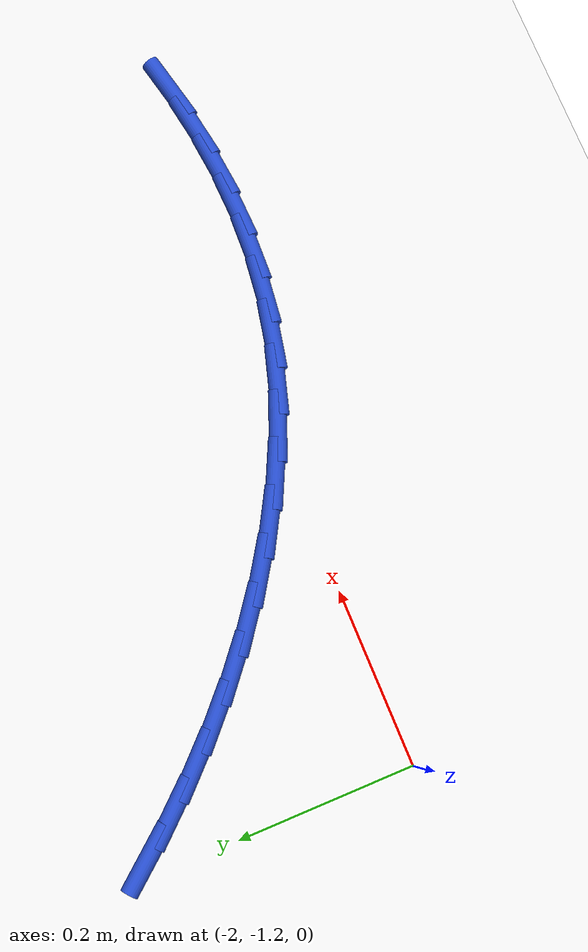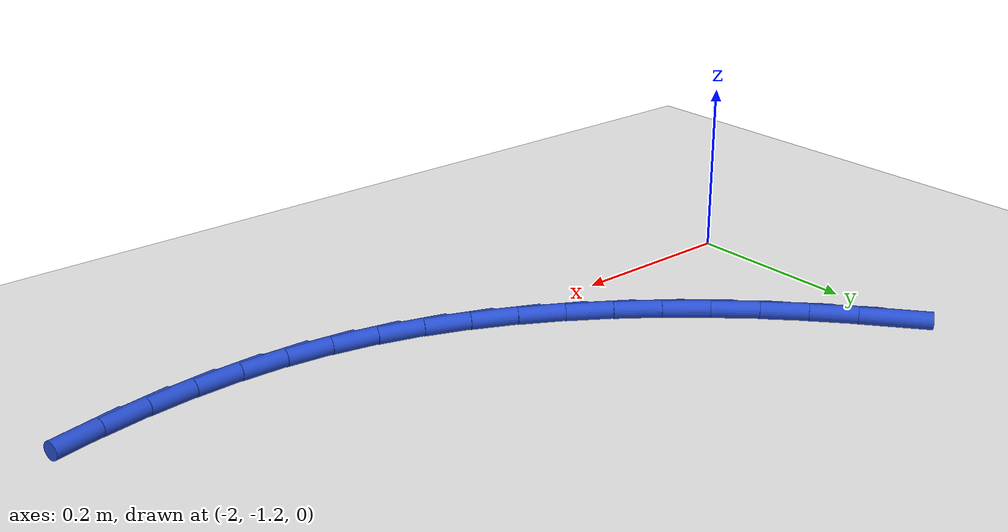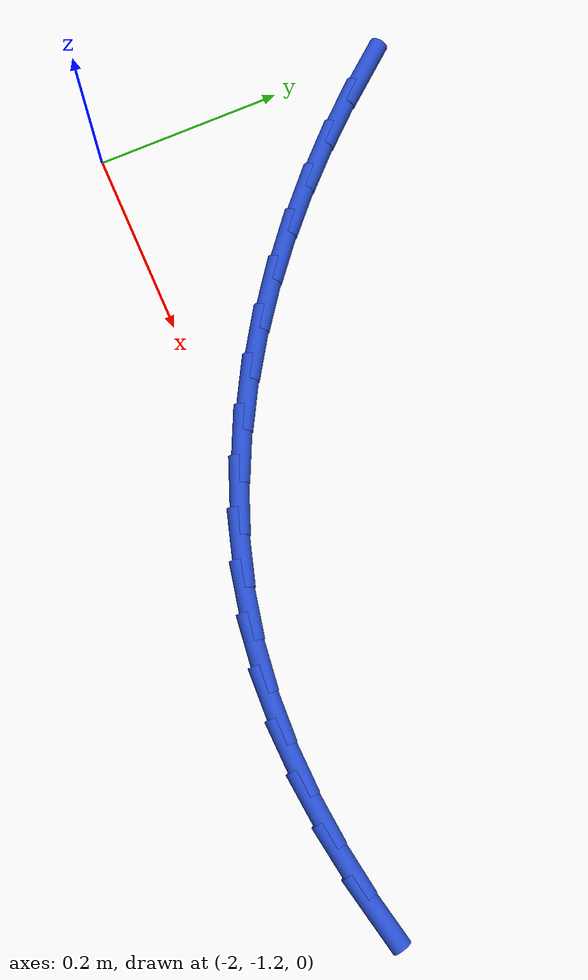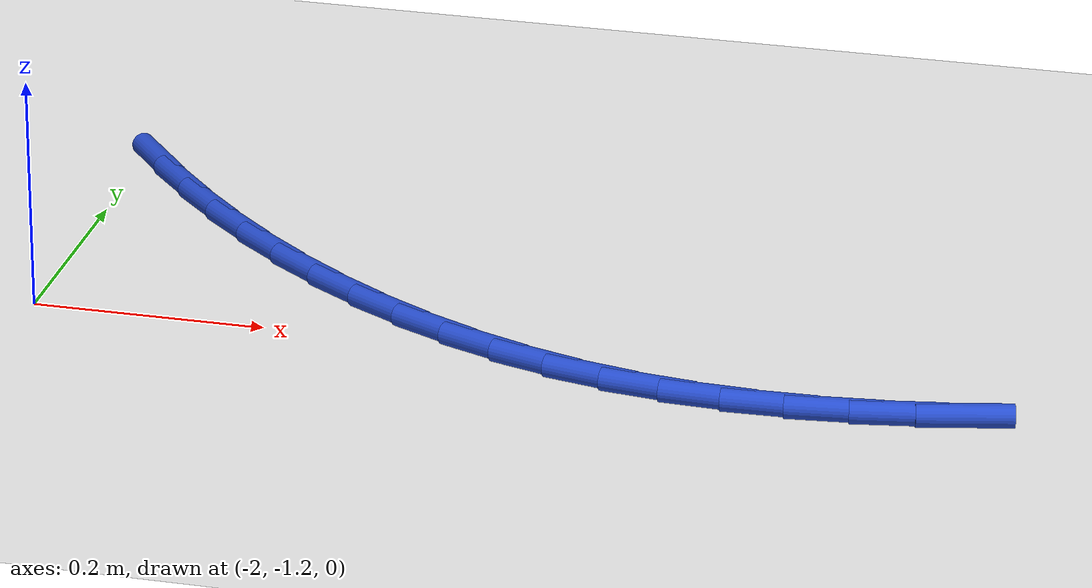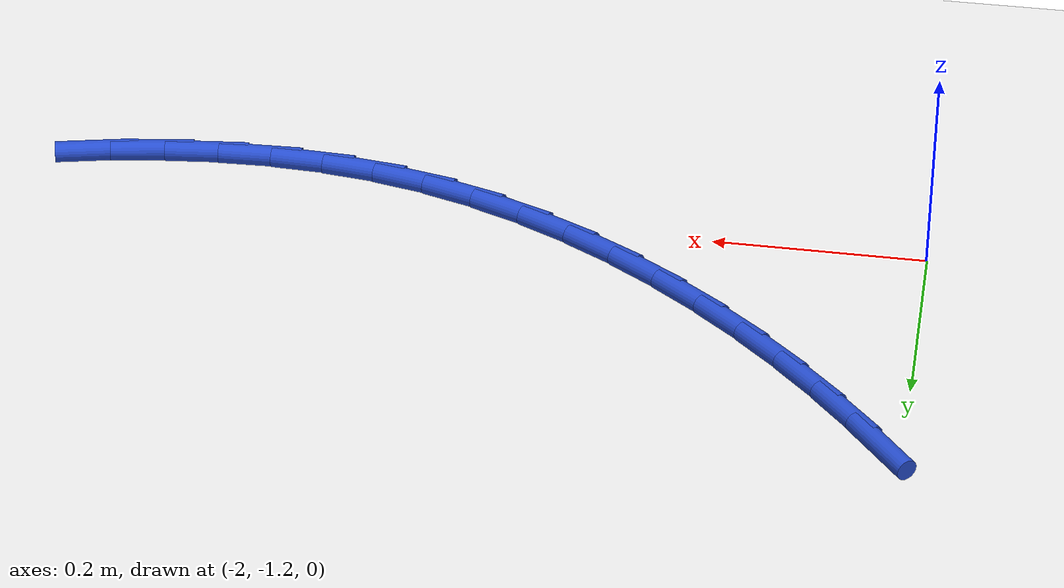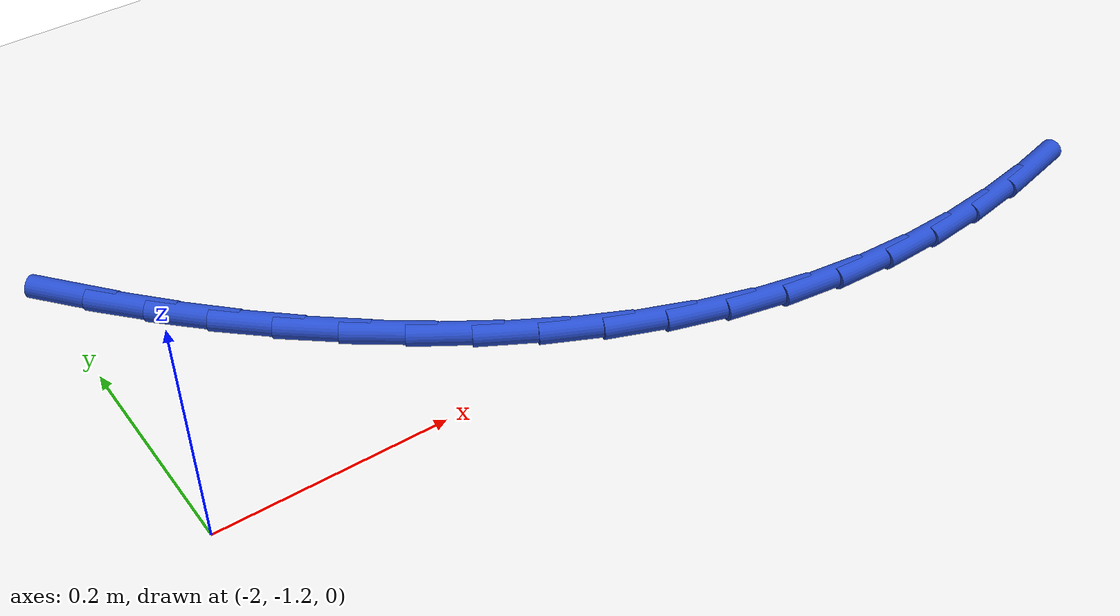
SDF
<sdf version="1.6">
 <world name="default">
  <model name="ground_plane">
   <static>1</static>
   <link name="link">
    <collision name="collision">
     <geometry><plane><normal>0 0 1</normal><size>100 100</size></plane></geometry>
     <surface><friction><ode><mu>100</mu><mu2>50</mu2></ode></friction></surface>
    </collision>
    <visual name="visual">
     <cast_shadows>0</cast_shadows>
     <geometry><plane><normal>0 0 1</normal><size>100 100</size></plane></geometry>
     <material>
      <script><uri>file://media/materials/scripts/gazebo.material</uri><name>Gazebo/WhiteGlow</name></script>
     </material>
    </visual>
   </link>
  </model>
  <model name="line">
   <link name="link_88">
    <pose>-1.980461495605691 -0.9055820277438826 0.01 0 1.57 -0.8862905588989823</pose>
    <collision name="collision">
     <geometry><cylinder><radius>0.01</radius><length>0.08</length></cylinder></geometry>
    </collision>
    <visual name="visual">
     <material>
      <script><name>Gazebo/Blue</name><uri>file://media/materials/scripts/gazebo.material</uri></script>
     </material>
     <geometry><cylinder><radius>0.01</radius><length>0.08</length></cylinder></geometry>
    </visual>
   </link>
   <link name="link_89">
    <pose>-1.9465250198801338 -0.9471636651651609 0.01 0 1.57 -0.8401615587392092</pose>
    <collision name="collision">
     <geometry><cylinder><radius>0.01</radius><length>0.08</length></cylinder></geometry>
    </collision>
    <visual name="visual">
     <material>
      <script><name>Gazebo/Blue</name><uri>file://media/materials/scripts/gazebo.material</uri></script>
     </material>
     <geometry><cylinder><radius>0.01</radius><length>0.08</length></cylinder></geometry>
    </visual>
   </link>
   <link name="link_90">
    <pose>-1.9104270807563217 -0.9874487867023141 0.01 0 1.57 -0.7932149013805885</pose>
    <collision name="collision">
     <geometry><cylinder><radius>0.01</radius><length>0.08</length></cylinder></geometry>
    </collision>
    <visual name="visual">
     <material>
      <script><name>Gazebo/Blue</name><uri>file://media/materials/scripts/gazebo.material</uri></script>
     </material>
     <geometry><cylinder><radius>0.01</radius><length>0.08</length></cylinder></geometry>
    </visual>
   </link>
   <link name="link_91">
    <pose>-1.8723283074955315 -1.0261478809983267 0.01 0 1.57 -0.7442171698972916</pose>
    <collision name="collision">
     <geometry><cylinder><radius>0.01</radius><length>0.08</length></cylinder></geometry>
    </collision>
    <visual name="visual">
     <material>
      <script><name>Gazebo/Blue</name><uri>file://media/materials/scripts/gazebo.material</uri></script>
     </material>
     <geometry><cylinder><radius>0.01</radius><length>0.08</length></cylinder></geometry>
    </visual>
   </link>
   <link name="link_92">
    <pose>-1.8323590843461905 -1.0629536454058535 0.01 0 1.57 -0.6925750549778977</pose>
    <collision name="collision">
     <geometry><cylinder><radius>0.01</radius><length>0.08</length></cylinder></geometry>
    </collision>
    <visual name="visual">
     <material>
      <script><name>Gazebo/Blue</name><uri>file://media/materials/scripts/gazebo.material</uri></script>
     </material>
     <geometry><cylinder><radius>0.01</radius><length>0.08</length></cylinder></geometry>
    </visual>
   </link>
   <link name="link_93">
    <pose>-1.7906497955567207 -1.0975587772775484 0.01 0 1.57 -0.6376839896247232</pose>
    <collision name="collision">
     <geometry><cylinder><radius>0.01</radius><length>0.08</length></cylinder></geometry>
    </collision>
    <visual name="visual">
     <material>
      <script><name>Gazebo/Blue</name><uri>file://media/materials/scripts/gazebo.material</uri></script>
     </material>
     <geometry><cylinder><radius>0.01</radius><length>0.08</length></cylinder></geometry>
    </visual>
   </link>
   <link name="link_94">
    <pose>-1.7473308253755482 -1.129655973966067 0.01 0 1.57 -0.5789301447048903</pose>
    <collision name="collision">
     <geometry><cylinder><radius>0.01</radius><length>0.08</length></cylinder></geometry>
    </collision>
    <visual name="visual">
     <material>
      <script><name>Gazebo/Blue</name><uri>file://media/materials/scripts/gazebo.material</uri></script>
     </material>
     <geometry><cylinder><radius>0.01</radius><length>0.08</length></cylinder></geometry>
    </visual>
   </link>
   <link name="link_95">
    <pose>-1.7025325580510948 -1.1589379328240637 0.01 0 1.57 -0.515702352688998</pose>
    <collision name="collision">
     <geometry><cylinder><radius>0.01</radius><length>0.08</length></cylinder></geometry>
    </collision>
    <visual name="visual">
     <material>
      <script><name>Gazebo/Blue</name><uri>file://media/materials/scripts/gazebo.material</uri></script>
     </material>
     <geometry><cylinder><radius>0.01</radius><length>0.08</length></cylinder></geometry>
    </visual>
   </link>
   <link name="link_96">
    <pose>-1.656385377831788 -1.1850973512041925 0.01 0 1.57 -0.4474176172338193</pose>
    <collision name="collision">
     <geometry><cylinder><radius>0.01</radius><length>0.08</length></cylinder></geometry>
    </collision>
    <visual name="visual">
     <material>
      <script><name>Gazebo/Blue</name><uri>file://media/materials/scripts/gazebo.material</uri></script>
     </material>
     <geometry><cylinder><radius>0.01</radius><length>0.08</length></cylinder></geometry>
    </visual>
   </link>
   <link name="link_97">
    <pose>-1.6090196689660519 -1.207826926459109 0.01 0 1.57 -0.3735643638218943</pose>
    <collision name="collision">
     <geometry><cylinder><radius>0.01</radius><length>0.08</length></cylinder></geometry>
    </collision>
    <visual name="visual">
     <material>
      <script><name>Gazebo/Blue</name><uri>file://media/materials/scripts/gazebo.material</uri></script>
     </material>
     <geometry><cylinder><radius>0.01</radius><length>0.08</length></cylinder></geometry>
    </visual>
   </link>
   <link name="link_98">
    <pose>-1.5605658157023088 -1.226819355941467 0.01 0 1.57 -0.29376673954178295</pose>
    <collision name="collision">
     <geometry><cylinder><radius>0.01</radius><length>0.08</length></cylinder></geometry>
    </collision>
    <visual name="visual">
     <material>
      <script><name>Gazebo/Blue</name><uri>file://media/materials/scripts/gazebo.material</uri></script>
     </material>
     <geometry><cylinder><radius>0.01</radius><length>0.08</length></cylinder></geometry>
    </visual>
   </link>
   <link name="link_99">
    <pose>-1.5111542022889854 -1.241767337003922 0.01 0 1.57 -0.2080130591812704</pose>
    <collision name="collision">
     <geometry><cylinder><radius>0.01</radius><length>0.08</length></cylinder></geometry>
    </collision>
    <visual name="visual">
     <material>
      <script><name>Gazebo/Blue</name><uri>file://media/materials/scripts/gazebo.material</uri></script>
     </material>
     <geometry><cylinder><radius>0.01</radius><length>0.08</length></cylinder></geometry>
    </visual>
   </link>
   <link name="link_100">
    <pose>-1.4609154304509004 -1.2523710393495209 0.01 0 1.57 -0.1213454794099097</pose>
    <collision name="collision">
     <geometry><cylinder><radius>0.01</radius><length>0.08</length></cylinder></geometry>
    </collision>
    <visual name="visual">
     <material>
      <script><name>Gazebo/Blue</name><uri>file://media/materials/scripts/gazebo.material</uri></script>
     </material>
     <geometry><cylinder><radius>0.01</radius><length>0.08</length></cylinder></geometry>
    </visual>
   </link>
   <link name="link_101">
    <pose>-1.4099874013751814 -1.2585814375538846 0.01 0 1.57 -0.0402461993368498</pose>
    <collision name="collision">
     <geometry><cylinder><radius>0.01</radius><length>0.08</length></cylinder></geometry>
    </collision>
    <visual name="visual">
     <material>
      <script><name>Gazebo/Blue</name><uri>file://media/materials/scripts/gazebo.material</uri></script>
     </material>
     <geometry><cylinder><radius>0.01</radius><length>0.08</length></cylinder></geometry>
    </visual>
   </link>
   <link name="link_102">
    <pose>-1.358516879725311 -1.2606540495913494 0.01 0 1.57 0.03452371574133157</pose>
    <collision name="collision">
     <geometry><cylinder><radius>0.01</radius><length>0.08</length></cylinder></geometry>
    </collision>
    <visual name="visual">
     <material>
      <script><name>Gazebo/Blue</name><uri>file://media/materials/scripts/gazebo.material</uri></script>
     </material>
     <geometry><cylinder><radius>0.01</radius><length>0.08</length></cylinder></geometry>
    </visual>
   </link>
   <link name="link_103">
    <pose>-1.306651164144348 -1.2588627406341 0.01 0 1.57 0.10289747414792272</pose>
    <collision name="collision">
     <geometry><cylinder><radius>0.01</radius><length>0.08</length></cylinder></geometry>
    </collision>
    <visual name="visual">
     <material>
      <script><name>Gazebo/Blue</name><uri>file://media/materials/scripts/gazebo.material</uri></script>
     </material>
     <geometry><cylinder><radius>0.01</radius><length>0.08</length></cylinder></geometry>
    </visual>
   </link>
   <link name="link_104">
    <pose>-1.2545375532753484 -1.2534813758543202 0.01 0 1.57 0.16505899891906722</pose>
    <collision name="collision">
     <geometry><cylinder><radius>0.01</radius><length>0.08</length></cylinder></geometry>
    </collision>
    <visual name="visual">
     <material>
      <script><name>Gazebo/Blue</name><uri>file://media/materials/scripts/gazebo.material</uri></script>
     </material>
     <geometry><cylinder><radius>0.01</radius><length>0.08</length></cylinder></geometry>
    </visual>
   </link>
   <link name="link_105">
    <pose>-1.2023233457613725 -1.2447838204241948 0.01 0 1.57 0.2213544388458064</pose>
    <collision name="collision">
     <geometry><cylinder><radius>0.01</radius><length>0.08</length></cylinder></geometry>
    </collision>
    <visual name="visual">
     <material>
      <script><name>Gazebo/Blue</name><uri>file://media/materials/scripts/gazebo.material</uri></script>
     </material>
     <geometry><cylinder><radius>0.01</radius><length>0.08</length></cylinder></geometry>
    </visual>
   </link>
  </model>
 </world>
</sdf>
